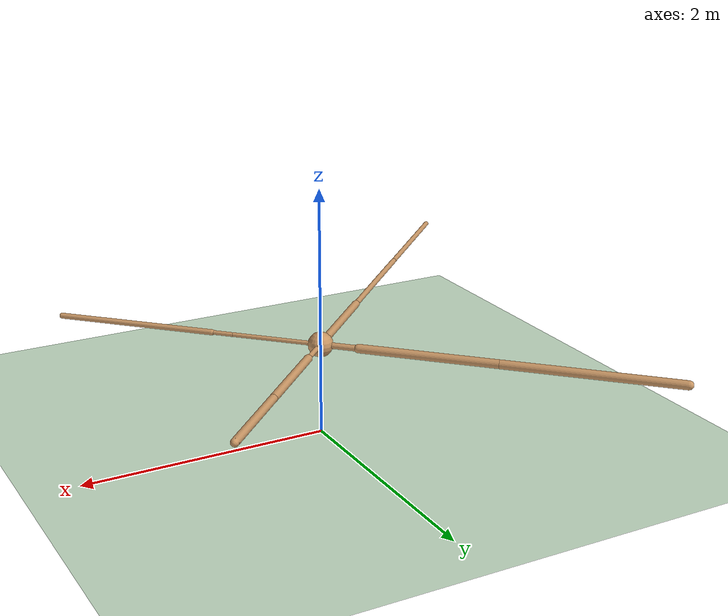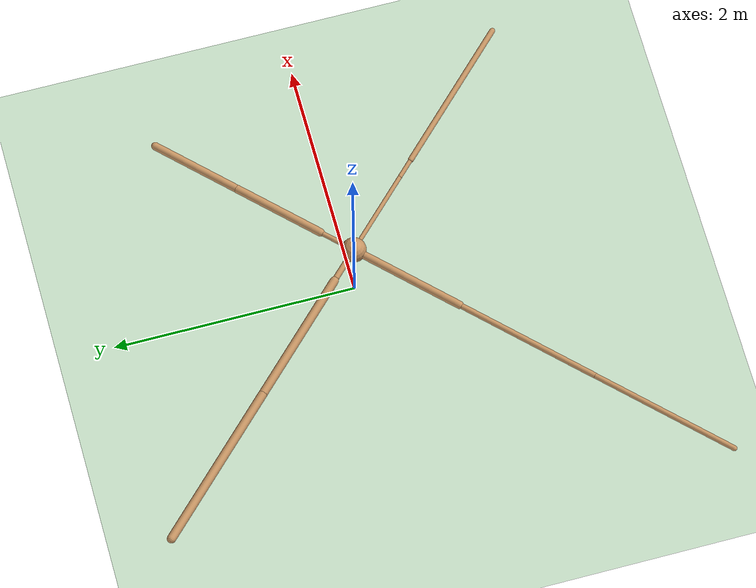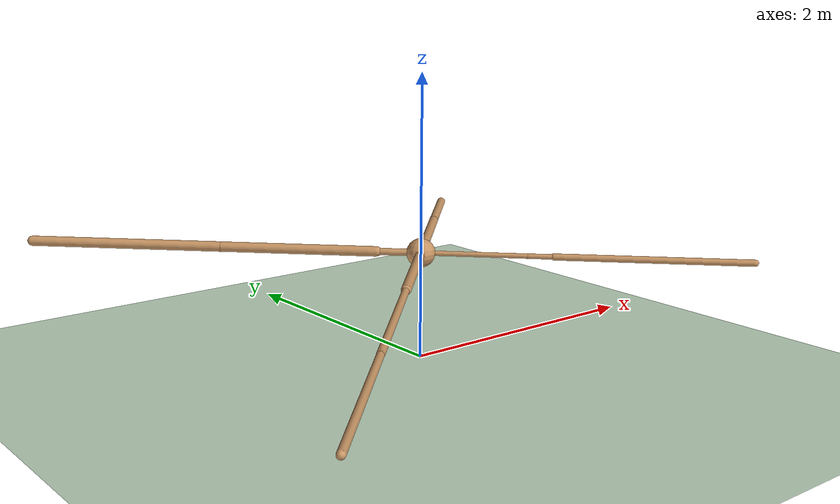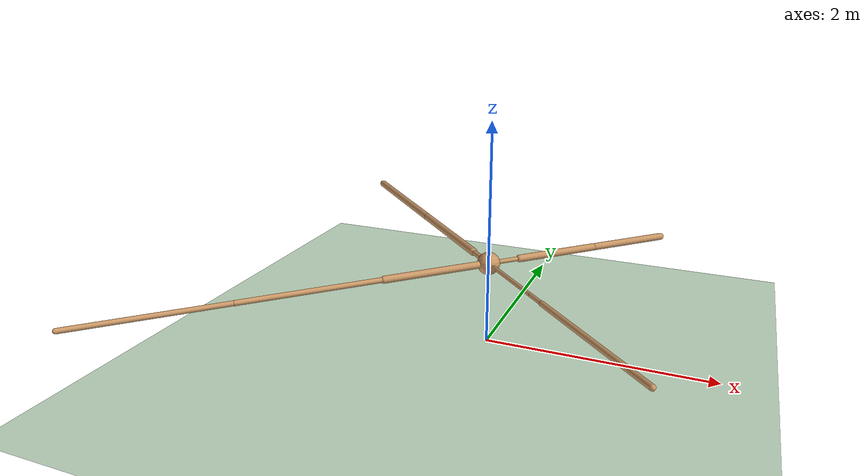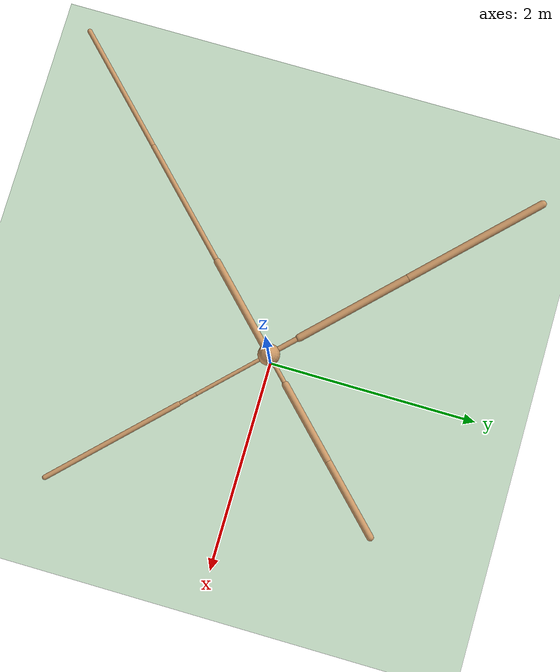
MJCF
<mujoco model="ant">
  <compiler angle="degree" coordinate="local" inertiafromgeom="true" />
  <option integrator="RK4" timestep="0.01" />
  <custom>
    <numeric data="0.0 0.0 0.55 1.0 0.0 0.0 0.0 0.0 1.0 0.0 -1.0 0.0 -1.0 0.0 1.0" name="init_qpos" />
  </custom>
  <default>
    <joint armature="1" damping="1" limited="true" />
    <geom conaffinity="0" condim="3" density="5.0" friction="1 0.5 0.5" margin="0.01" rgba="0.8 0.6 0.4 1" />
  </default>
  <asset>
    <texture builtin="gradient" height="100" rgb1="1 1 1" rgb2="0 0 0" type="skybox" width="100" />
    <texture builtin="flat" height="1278" mark="cross" markrgb="1 1 1" name="texgeom" random="0.01" rgb1="0.8 0.6 0.4" rgb2="0.8 0.6 0.4" type="cube" width="127" />
    <texture builtin="checker" height="100" name="texplane" rgb1="0 0 0" rgb2="0.8 0.8 0.8" type="2d" width="100" />
    <material name="MatPlane" reflectance="0.5" shininess="1" specular="1" texrepeat="60 60" texture="texplane" />
    <material name="geom" texture="texgeom" texuniform="true" />
  </asset>
  <worldbody>
    <light cutoff="100" diffuse="1 1 1" dir="-0 0 -1.3" directional="true" exponent="1" pos="0 0 1.3" specular=".1 .1 .1" />
    <geom conaffinity="1" condim="3" material="MatPlane" name="floor" pos="0 0 0" rgba="0.8 0.9 0.8 1" size="40 40 40" type="plane" />
    <body name="torso" pos="0 0 0.75">
      <camera name="track" mode="trackcom" pos="0 -11 5" xyaxes="1 0 0 0 0.5 1" />
      <geom name="torso_geom" pos="0 0 0" size="0.1009315475821495" type="sphere" />
      <joint armature="0" damping="0" limited="false" margin="0.01" name="root" pos="0 0 0" type="free" />
      <body name="front_left_leg" pos="0 0 0">
        <geom fromto="0 0 0 0.21768894791603088 0.21768894791603088 0" name="aux_1_geom" size="0.020257389172911644" type="capsule" />
        <body name="aux_1" pos="0.21768894791603088 0.21768894791603088 0">
          <joint axis="0 0 1" name="hip_1" pos="0.0 0.0 0.0" range="-30 30" type="hinge" />
          <geom fromto="0 0 0 0.54510897397995 0.54510897397995 0" name="left_leg_geom" size="0.03310117870569229" type="capsule" />
          <body name="left_leg_geom_aux" pos="0.54510897397995 0.54510897397995 0">
            <joint axis="-1 1 0" name="ankle_1" pos="0.0 0.0 0.0" range="30 70" type="hinge" />
            <geom fromto="0 0 0 0.5366061925888062 0.5366061925888062 0" name="left_ankle_geom" size="0.032375168055295944" type="capsule" />
          </body>
        </body>
      </body>
      <body name="front_right_leg" pos="0 0 0">
        <geom fromto="0 0 0 -0.21928557753562927 0.21928557753562927 0" name="aux_2_geom" size="0.024748284369707108" type="capsule" />
        <body name="aux_2" pos="-0.21928557753562927 0.21928557753562927 0">
          <joint axis="0 0 1" name="hip_2" pos="0.0 0.0 0.0" range="-30 30" type="hinge" />
          <geom fromto="0 0 0 -0.7870900630950928 0.7870900630950928 0" name="right_leg_geom" size="0.03591014817357063" type="capsule" />
          <body name="right_leg_geom_aux" pos="-0.7870900630950928 0.7870900630950928 0">
            <joint axis="1 1 0" name="ankle_2" pos="0.0 0.0 0.0" range="-70 -30" type="hinge" />
            <geom fromto="0 0 0 -0.9897053241729736 0.9897053241729736 0" name="right_ankle_geom" size="0.036322809755802155" type="capsule" />
          </body>
        </body>
      </body>
      <body name="back_leg" pos="0 0 0">
        <geom fromto="0 0 0 -0.6804728507995605 -0.6804728507995605 0" name="aux_3_geom" size="0.03226282447576523" type="capsule" />
        <body name="aux_3" pos="-0.6804728507995605 -0.6804728507995605 0">
          <joint axis="0 0 1" name="hip_3" pos="0.0 0.0 0.0" range="-30 30" type="hinge" />
          <geom fromto="0 0 0 -0.8598315715789795 -0.8598315715789795 0" name="back_leg_geom" size="0.023273836821317673" type="capsule" />
          <body name="back_leg_geom_aux" pos="-0.8598315715789795 -0.8598315715789795 0">
            <joint axis="-1 1 0" name="ankle_3" pos="0.0 0.0 0.0" range="-70 -30" type="hinge" />
            <geom fromto="0 0 0 -0.8799679279327393 -0.8799679279327393 0" name="third_ankle_geom" size="0.021936479955911636" type="capsule" />
          </body>
        </body>
      </body>
      <body name="right_back_leg" pos="0 0 0">
        <geom fromto="0 0 0 0.5195788741111755 -0.5195788741111755 0" name="aux_4_geom" size="0.01762833446264267" type="capsule" />
        <body name="aux_4" pos="0.5195788741111755 -0.5195788741111755 0">
          <joint axis="0 0 1" name="hip_4" pos="0.0 0.0 0.0" range="-30 30" type="hinge" />
          <geom fromto="0 0 0 0.12622177600860596 -0.12622177600860596 0" name="rightback_leg_geom" size="0.017921656370162964" type="capsule" />
          <body name="rightback_leg_geom_aux" pos="0.12622177600860596 -0.12622177600860596 0">
            <joint axis="1 1 0" name="ankle_4" pos="0.0 0.0 0.0" range="30 70" type="hinge" />
            <geom fromto="0 0 0 0.940722644329071 -0.940722644329071 0" name="fourth_ankle_geom" size="0.023531466722488403" type="capsule" />
          </body>
        </body>
      </body>
    </body>
  </worldbody>
  <actuator>
    <motor ctrllimited="true" ctrlrange="-1.0 1.0" joint="hip_4" gear="150" />
    <motor ctrllimited="true" ctrlrange="-1.0 1.0" joint="ankle_4" gear="150" />
    <motor ctrllimited="true" ctrlrange="-1.0 1.0" joint="hip_1" gear="150" />
    <motor ctrllimited="true" ctrlrange="-1.0 1.0" joint="ankle_1" gear="150" />
    <motor ctrllimited="true" ctrlrange="-1.0 1.0" joint="hip_2" gear="150" />
    <motor ctrllimited="true" ctrlrange="-1.0 1.0" joint="ankle_2" gear="150" />
    <motor ctrllimited="true" ctrlrange="-1.0 1.0" joint="hip_3" gear="150" />
    <motor ctrllimited="true" ctrlrange="-1.0 1.0" joint="ankle_3" gear="150" />
  </actuator>
</mujoco>
